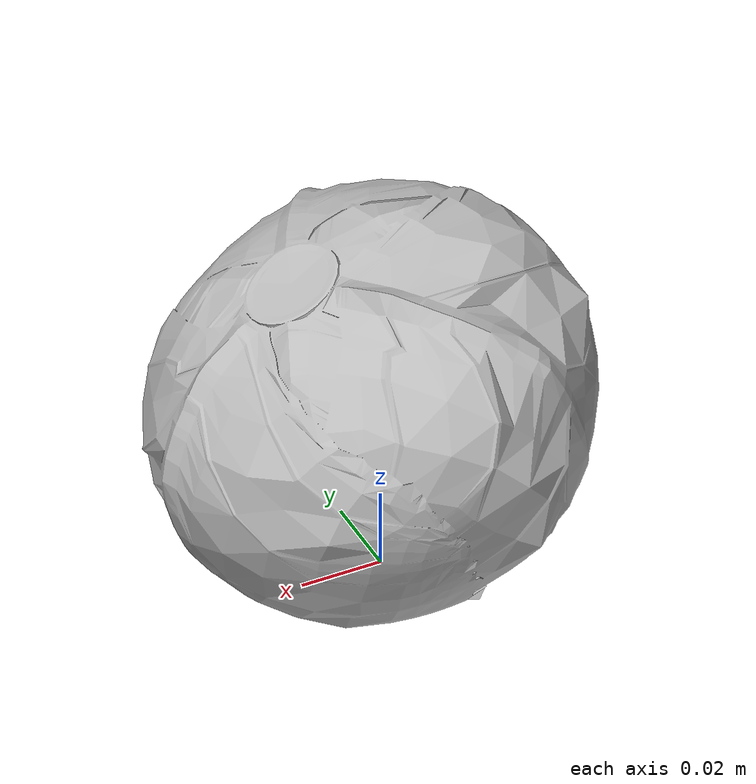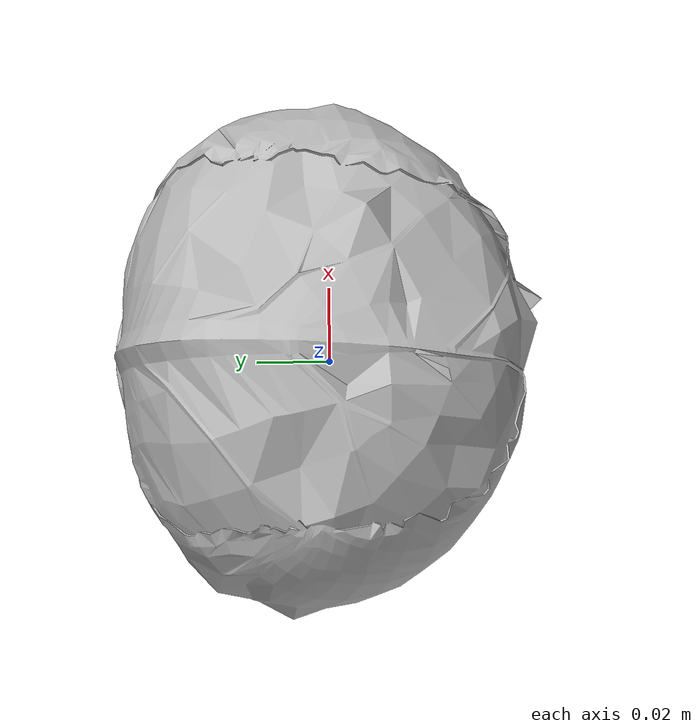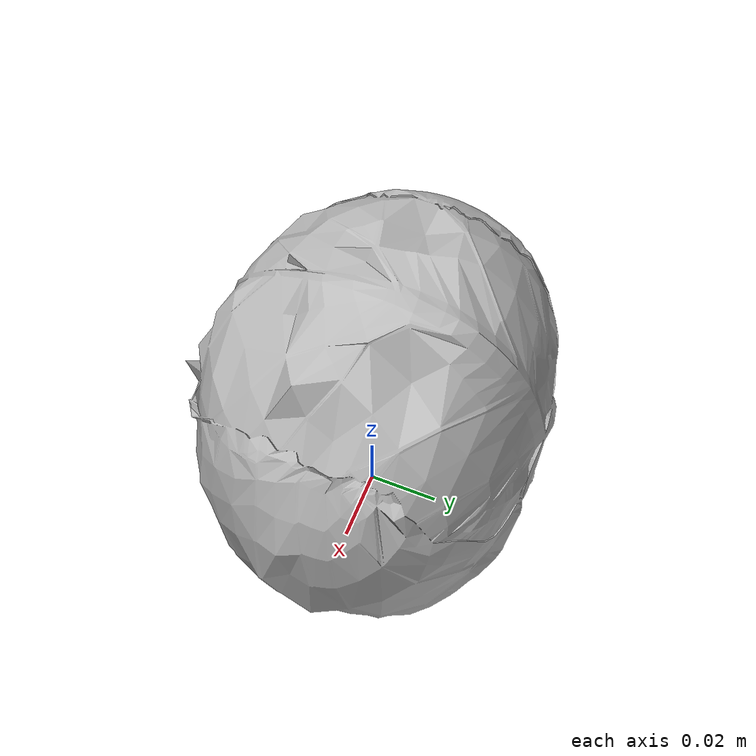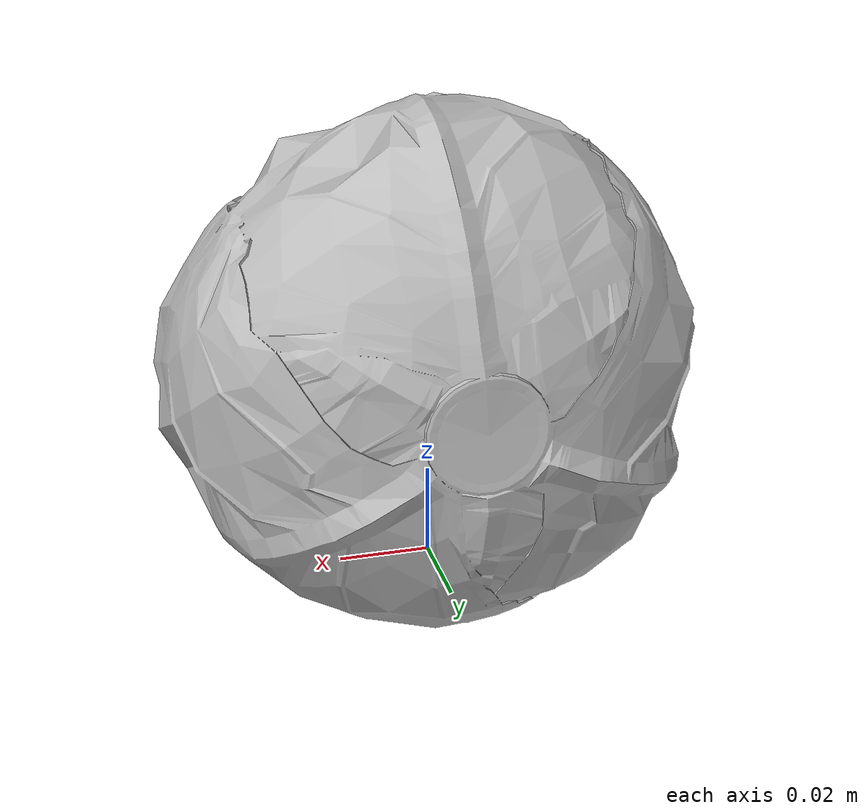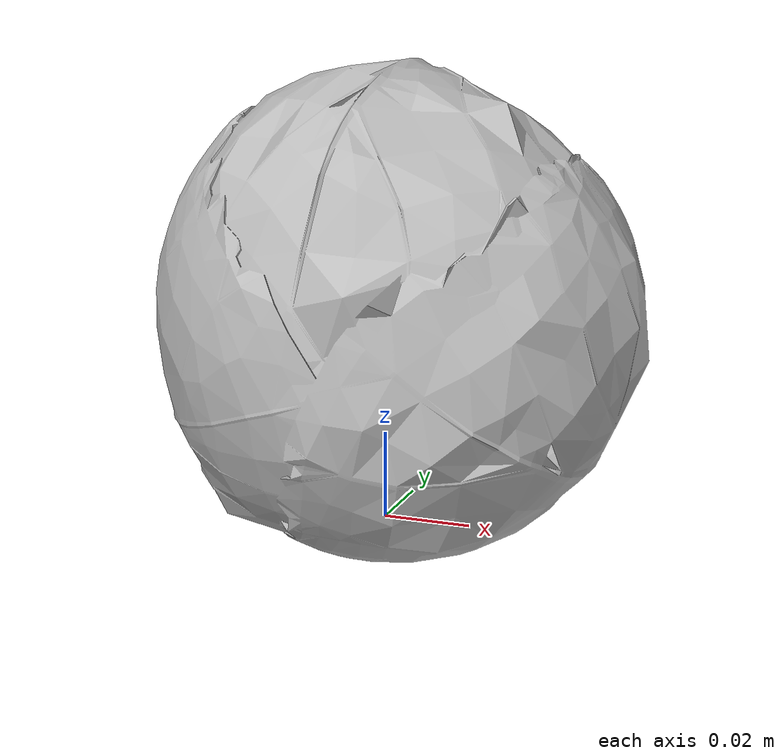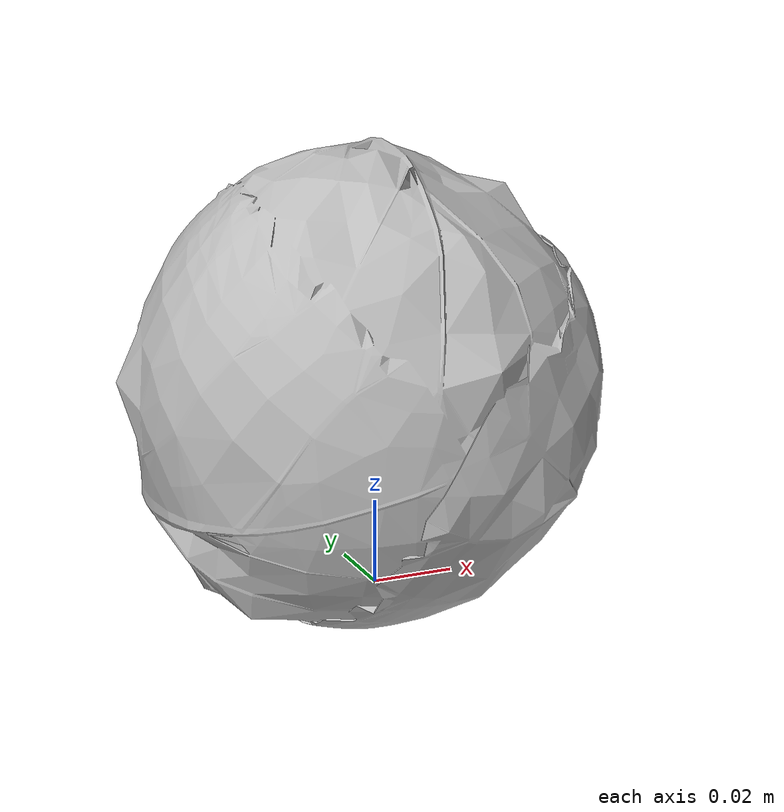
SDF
<?xml version='1.0'?>
<sdf version="1.4">
    <model name='cabbage'>
        <link name='link'>
          <inertial>
            <mass>1.5</mass>
            <inertia>
              <ixx>0.0017004</ixx>
              <ixy>0</ixy>
              <ixz>0</ixz>
              <iyy>0.0019839</iyy>
              <iyz>0</iyz>
              <izz>0.0016659</izz>
            </inertia>
          </inertial>
          <collision name="collision">
            <geometry>
                <mesh>
                    <scale>0.001 0.001 0.001</scale>
                    <uri>model://cabbage/cabbage_single_light.dae</uri>
                </mesh>
            </geometry>
            <!-- ref: https://qiita.com/Yuya-Shimizu/items/f1a22d430a3f6343b3e7 -->
            <surface>
                <friction>
                    <ode>
                        <mu>0.6</mu>
                        <mu2>0.6</mu2>
                    </ode>
                </friction>
                <contact>
                    <ode>
                        <max_vel>0.1</max_vel>
                        <min_depth>0.0001</min_depth>
                    </ode>
                </contact>
            </surface>
          </collision>
          <visual name='visual'>
            <geometry>
              <mesh>
                <scale>0.001 0.001 0.001</scale>
                <uri>model://cabbage/cabbage_single_light.dae</uri>
              </mesh>
            </geometry>
            <material>
              <script>
                <uri>model://cabbage/texture.material</uri>
                <name>CabbageTexture</name>
              </script>
            </material>
          </visual>
        </link>
        <pose frame=''>0 0 0.047 1.570796 0 0</pose>
      </model>
</sdf>
